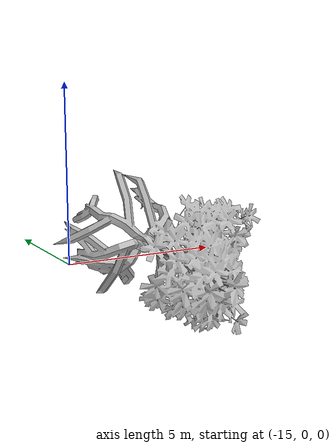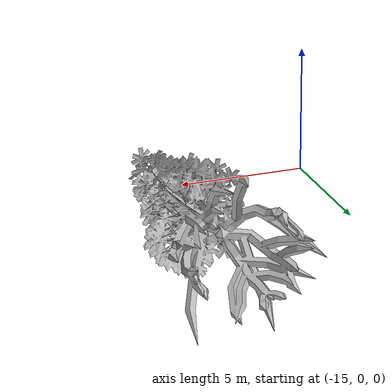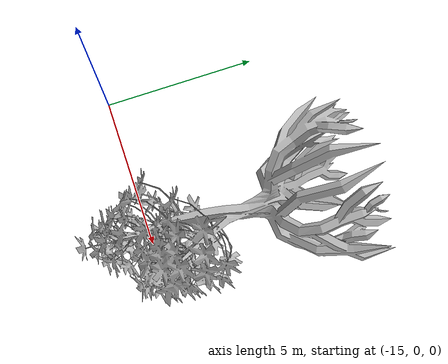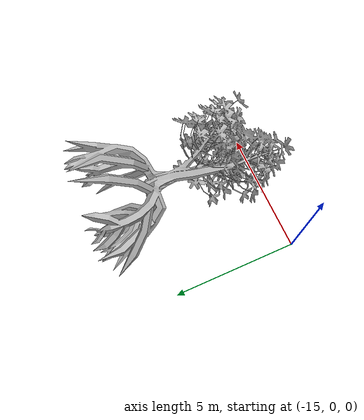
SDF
<?xml version="1.0" ?>
<sdf version="1.10">
  <model name="mangrove_03_10m">
    <pose>0 0 0 0 0 0</pose>
    <static>true</static>
    <link name="visual_only_link">
      <!-- Terrain at (14, 7) is approximately 0.03 m above world zero. -->
      <pose>-9.975 6.510 -0.20 1.5708 0 0</pose>
      <visual name="imported_mangrove_visual"><geometry><mesh><uri>model://mangrove_imported/meshes/Mangrovetree.glb</uri><scale>3.5 3.5 3.5</scale></mesh></geometry></visual>
    </link>
    <!-- The converted GLB mesh is the authoritative visual and collision geometry. -->
    <!-- A mesh collision is used so Gazebo physics and LiDAR can detect the tree shape. -->
    <link name="glb_collision_link">
      <pose>0 0 0.625 0 0 0</pose>
      <collision name="glb_mesh_collision">
        <geometry><cylinder><radius>0.95</radius><length>4.0</length></cylinder></geometry>
      </collision>
    </link>
  </model>
</sdf>
